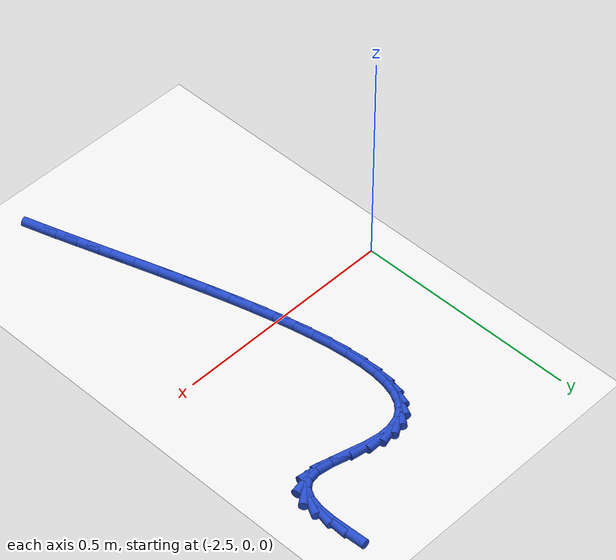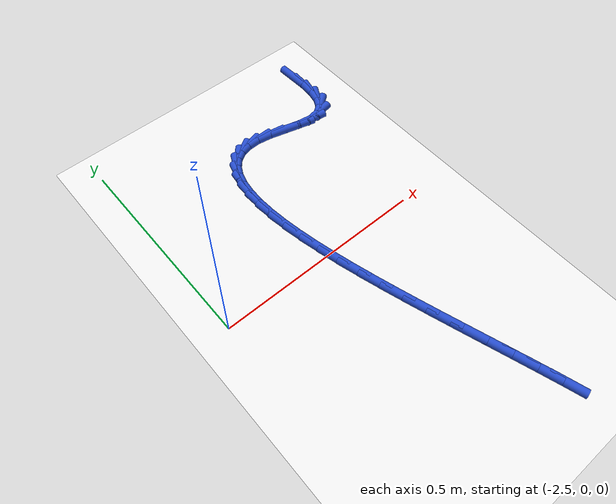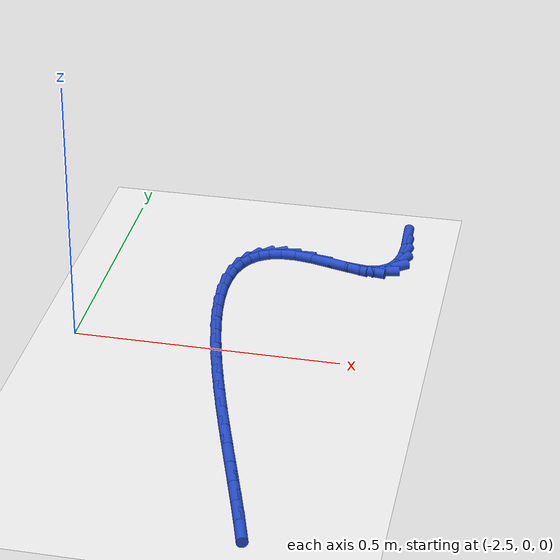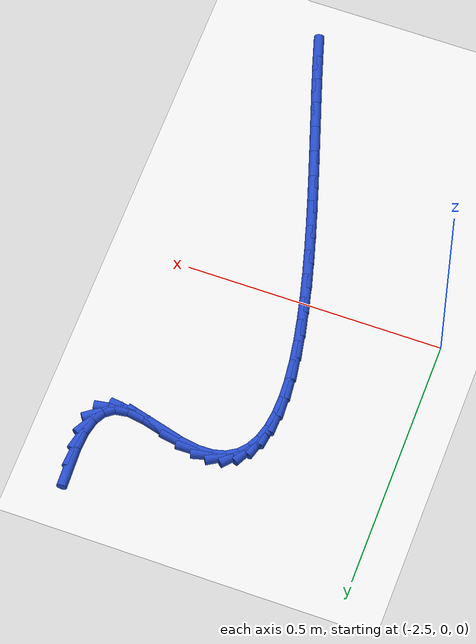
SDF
<sdf version="1.6">
 <world name="default">
  <model name="ground_plane">
   <static>1</static>
   <link name="link">
    <collision name="collision">
     <geometry><plane><normal>0 0 1</normal><size>100 100</size></plane></geometry>
     <surface><friction><ode><mu>100</mu><mu2>50</mu2></ode></friction></surface>
    </collision>
    <visual name="visual">
     <cast_shadows>0</cast_shadows>
     <geometry><plane><normal>0 0 1</normal><size>100 100</size></plane></geometry>
     <material>
      <script><uri>file://media/materials/scripts/gazebo.material</uri><name>Gazebo/WhiteGlow</name></script>
     </material>
    </visual>
   </link>
  </model>
  <model name="line">
   <link name="link_84">
    <pose>-1.9411811330460744 0.4690626129924157 0.01 0 1.57 -1.5256904111098226</pose>
    <collision name="collision">
     <geometry><cylinder><radius>0.01</radius><length>0.08</length></cylinder></geometry>
    </collision>
    <visual name="visual">
     <material>
      <script><name>Gazebo/Blue</name><uri>file://media/materials/scripts/gazebo.material</uri></script>
     </material>
     <geometry><cylinder><radius>0.01</radius><length>0.08</length></cylinder></geometry>
    </visual>
   </link>
   <link name="link_85">
    <pose>-1.939363995377513 0.42880392130696793 0.01 0 1.57 1.5215669505991989</pose>
    <collision name="collision">
     <geometry><cylinder><radius>0.01</radius><length>0.08</length></cylinder></geometry>
    </collision>
    <visual name="visual">
     <material>
      <script><name>Gazebo/Blue</name><uri>file://media/materials/scripts/gazebo.material</uri></script>
     </material>
     <geometry><cylinder><radius>0.01</radius><length>0.08</length></cylinder></geometry>
    </visual>
   </link>
   <link name="link_86">
    <pose>-1.9410996755676637 0.39357540656544066 0.01 0 1.57 1.3572206433870737</pose>
    <collision name="collision">
     <geometry><cylinder><radius>0.01</radius><length>0.08</length></cylinder></geometry>
    </collision>
    <visual name="visual">
     <material>
      <script><name>Gazebo/Blue</name><uri>file://media/materials/scripts/gazebo.material</uri></script>
     </material>
     <geometry><cylinder><radius>0.01</radius><length>0.08</length></cylinder></geometry>
    </visual>
   </link>
   <link name="link_87">
    <pose>-1.9474139277510742 0.36446183169670143 0.01 0 1.57 1.0726617431655097</pose>
    <collision name="collision">
     <geometry><cylinder><radius>0.01</radius><length>0.08</length></cylinder></geometry>
    </collision>
    <visual name="visual">
     <material>
      <script><name>Gazebo/Blue</name><uri>file://media/materials/scripts/gazebo.material</uri></script>
     </material>
     <geometry><cylinder><radius>0.01</radius><length>0.08</length></cylinder></geometry>
    </visual>
   </link>
   <link name="link_88">
    <pose>-1.9593325060622897 0.34254795962961737 0.01 0 1.57 0.6336967444818498</pose>
    <collision name="collision">
     <geometry><cylinder><radius>0.01</radius><length>0.08</length></cylinder></geometry>
    </collision>
    <visual name="visual">
     <material>
      <script><name>Gazebo/Blue</name><uri>file://media/materials/scripts/gazebo.material</uri></script>
     </material>
     <geometry><cylinder><radius>0.01</radius><length>0.08</length></cylinder></geometry>
    </visual>
   </link>
   <link name="link_89">
    <pose>-1.9778811646358583 0.32891855329305597 0.01 0 1.57 0.16119219974146323</pose>
    <collision name="collision">
     <geometry><cylinder><radius>0.01</radius><length>0.08</length></cylinder></geometry>
    </collision>
    <visual name="visual">
     <material>
      <script><name>Gazebo/Blue</name><uri>file://media/materials/scripts/gazebo.material</uri></script>
     </material>
     <geometry><cylinder><radius>0.01</radius><length>0.08</length></cylinder></geometry>
    </visual>
   </link>
   <link name="link_90">
    <pose>-2.004085099993887 0.32465771622533063 0.01 0 1.57 -0.14441951825249436</pose>
    <collision name="collision">
     <geometry><cylinder><radius>0.01</radius><length>0.08</length></cylinder></geometry>
    </collision>
    <visual name="visual">
     <material>
      <script><name>Gazebo/Blue</name><uri>file://media/materials/scripts/gazebo.material</uri></script>
     </material>
     <geometry><cylinder><radius>0.01</radius><length>0.08</length></cylinder></geometry>
    </visual>
   </link>
   <link name="link_91">
    <pose>-2.0378909882426184 0.3295741747965507 0.01 0 1.57 -0.2563564714336061</pose>
    <collision name="collision">
     <geometry><cylinder><radius>0.01</radius><length>0.08</length></cylinder></geometry>
    </collision>
    <visual name="visual">
     <material>
      <script><name>Gazebo/Blue</name><uri>file://media/materials/scripts/gazebo.material</uri></script>
     </material>
     <geometry><cylinder><radius>0.01</radius><length>0.08</length></cylinder></geometry>
    </visual>
   </link>
   <link name="link_92">
    <pose>-2.075918181503772 0.3395420121575911 0.01 0 1.57 -0.25920325822992685</pose>
    <collision name="collision">
     <geometry><cylinder><radius>0.01</radius><length>0.08</length></cylinder></geometry>
    </collision>
    <visual name="visual">
     <material>
      <script><name>Gazebo/Blue</name><uri>file://media/materials/scripts/gazebo.material</uri></script>
     </material>
     <geometry><cylinder><radius>0.01</radius><length>0.08</length></cylinder></geometry>
    </visual>
   </link>
   <link name="link_93">
    <pose>-2.1141464047635354 0.34967893649152515 0.01 0 1.57 -0.16135335954710123</pose>
    <collision name="collision">
     <geometry><cylinder><radius>0.01</radius><length>0.08</length></cylinder></geometry>
    </collision>
    <visual name="visual">
     <material>
      <script><name>Gazebo/Blue</name><uri>file://media/materials/scripts/gazebo.material</uri></script>
     </material>
     <geometry><cylinder><radius>0.01</radius><length>0.08</length></cylinder></geometry>
    </visual>
   </link>
   <link name="link_94">
    <pose>-2.1487223956959918 0.3553068141927821 0.01 0 1.57 0.02324669888049152</pose>
    <collision name="collision">
     <geometry><cylinder><radius>0.01</radius><length>0.08</length></cylinder></geometry>
    </collision>
    <visual name="visual">
     <material>
      <script><name>Gazebo/Blue</name><uri>file://media/materials/scripts/gazebo.material</uri></script>
     </material>
     <geometry><cylinder><radius>0.01</radius><length>0.08</length></cylinder></geometry>
    </visual>
   </link>
   <link name="link_95">
    <pose>-2.1781449656784413 0.3546227133322473 0.01 0 1.57 0.26589332979328667</pose>
    <collision name="collision">
     <geometry><cylinder><radius>0.01</radius><length>0.08</length></cylinder></geometry>
    </collision>
    <visual name="visual">
     <material>
      <script><name>Gazebo/Blue</name><uri>file://media/materials/scripts/gazebo.material</uri></script>
     </material>
     <geometry><cylinder><radius>0.01</radius><length>0.08</length></cylinder></geometry>
    </visual>
   </link>
   <link name="link_96">
    <pose>-2.2026512340393505 0.34794862941336613 0.01 0 1.57 0.5540584916845906</pose>
    <collision name="collision">
     <geometry><cylinder><radius>0.01</radius><length>0.08</length></cylinder></geometry>
    </collision>
    <visual name="visual">
     <material>
      <script><name>Gazebo/Blue</name><uri>file://media/materials/scripts/gazebo.material</uri></script>
     </material>
     <geometry><cylinder><radius>0.01</radius><length>0.08</length></cylinder></geometry>
    </visual>
   </link>
   <link name="link_97">
    <pose>-2.222519050326349 0.33565634702326347 0.01 0 1.57 0.8467954505629541</pose>
    <collision name="collision">
     <geometry><cylinder><radius>0.01</radius><length>0.08</length></cylinder></geometry>
    </collision>
    <visual name="visual">
     <material>
      <script><name>Gazebo/Blue</name><uri>file://media/materials/scripts/gazebo.material</uri></script>
     </material>
     <geometry><cylinder><radius>0.01</radius><length>0.08</length></cylinder></geometry>
    </visual>
   </link>
   <link name="link_98">
    <pose>-2.238026264087067 0.31811765074906445 0.01 0 1.57 1.0994050968879376</pose>
    <collision name="collision">
     <geometry><cylinder><radius>0.01</radius><length>0.08</length></cylinder></geometry>
    </collision>
    <visual name="visual">
     <material>
      <script><name>Gazebo/Blue</name><uri>file://media/materials/scripts/gazebo.material</uri></script>
     </material>
     <geometry><cylinder><radius>0.01</radius><length>0.08</length></cylinder></geometry>
    </visual>
   </link>
   <link name="link_99">
    <pose>-2.2494507248691376 0.2957043251778943 0.01 0 1.57 1.2949294324138876</pose>
    <collision name="collision">
     <geometry><cylinder><radius>0.01</radius><length>0.08</length></cylinder></geometry>
    </collision>
    <visual name="visual">
     <material>
      <script><name>Gazebo/Blue</name><uri>file://media/materials/scripts/gazebo.material</uri></script>
     </material>
     <geometry><cylinder><radius>0.01</radius><length>0.08</length></cylinder></geometry>
    </visual>
   </link>
   <link name="link_100">
    <pose>-2.2570702822201887 0.2687881548968778 0.01 0 1.57 1.4397364974301867</pose>
    <collision name="collision">
     <geometry><cylinder><radius>0.01</radius><length>0.08</length></cylinder></geometry>
    </collision>
    <visual name="visual">
     <material>
      <script><name>Gazebo/Blue</name><uri>file://media/materials/scripts/gazebo.material</uri></script>
     </material>
     <geometry><cylinder><radius>0.01</radius><length>0.08</length></cylinder></geometry>
    </visual>
   </link>
   <link name="link_101">
    <pose>-2.2611627856878527 0.23774092449314013 0.01 0 1.57 1.5465728616678007</pose>
    <collision name="collision">
     <geometry><cylinder><radius>0.01</radius><length>0.08</length></cylinder></geometry>
    </collision>
    <visual name="visual">
     <material>
      <script><name>Gazebo/Blue</name><uri>file://media/materials/scripts/gazebo.material</uri></script>
     </material>
     <geometry><cylinder><radius>0.01</radius><length>0.08</length></cylinder></geometry>
    </visual>
   </link>
   <link name="link_102">
    <pose>-2.2620060848197605 0.2029344185538063 0.01 0 1.57 -1.5151368562012628</pose>
    <collision name="collision">
     <geometry><cylinder><radius>0.01</radius><length>0.08</length></cylinder></geometry>
    </collision>
    <visual name="visual">
     <material>
      <script><name>Gazebo/Blue</name><uri>file://media/materials/scripts/gazebo.material</uri></script>
     </material>
     <geometry><cylinder><radius>0.01</radius><length>0.08</length></cylinder></geometry>
    </visual>
   </link>
   <link name="link_103">
    <pose>-2.259878029163542 0.16474042166600136 0.01 0 1.57 -1.4543252421018584</pose>
    <collision name="collision">
     <geometry><cylinder><radius>0.01</radius><length>0.08</length></cylinder></geometry>
    </collision>
    <visual name="visual">
     <material>
      <script><name>Gazebo/Blue</name><uri>file://media/materials/scripts/gazebo.material</uri></script>
     </material>
     <geometry><cylinder><radius>0.01</radius><length>0.08</length></cylinder></geometry>
    </visual>
   </link>
   <link name="link_104">
    <pose>-2.255056468266828 0.12353071841685026 0.01 0 1.57 -1.4072393299807355</pose>
    <collision name="collision">
     <geometry><cylinder><radius>0.01</radius><length>0.08</length></cylinder></geometry>
    </collision>
    <visual name="visual">
     <material>
      <script><name>Gazebo/Blue</name><uri>file://media/materials/scripts/gazebo.material</uri></script>
     </material>
     <geometry><cylinder><radius>0.01</radius><length>0.08</length></cylinder></geometry>
    </visual>
   </link>
   <link name="link_105">
    <pose>-2.247819251677251 0.07967709339347816 0.01 0 1.57 -1.3702785292008288</pose>
    <collision name="collision">
     <geometry><cylinder><radius>0.01</radius><length>0.08</length></cylinder></geometry>
    </collision>
    <visual name="visual">
     <material>
      <script><name>Gazebo/Blue</name><uri>file://media/materials/scripts/gazebo.material</uri></script>
     </material>
     <geometry><cylinder><radius>0.01</radius><length>0.08</length></cylinder></geometry>
    </visual>
   </link>
   <link name="link_106">
    <pose>-2.23844422894244 0.03355133118301013 0.01 0 1.57 -1.3409940630813981</pose>
    <collision name="collision">
     <geometry><cylinder><radius>0.01</radius><length>0.08</length></cylinder></geometry>
    </collision>
    <visual name="visual">
     <material>
      <script><name>Gazebo/Blue</name><uri>file://media/materials/scripts/gazebo.material</uri></script>
     </material>
     <geometry><cylinder><radius>0.01</radius><length>0.08</length></cylinder></geometry>
    </visual>
   </link>
   <link name="link_107">
    <pose>-2.2272092496100266 -0.014474783627428822 0.01 0 1.57 -1.3176975963674313</pose>
    <collision name="collision">
     <geometry><cylinder><radius>0.01</radius><length>0.08</length></cylinder></geometry>
    </collision>
    <visual name="visual">
     <material>
      <script><name>Gazebo/Blue</name><uri>file://media/materials/scripts/gazebo.material</uri></script>
     </material>
     <geometry><cylinder><radius>0.01</radius><length>0.08</length></cylinder></geometry>
    </visual>
   </link>
   <link name="link_108">
    <pose>-2.2143921632276404 -0.0640294664507137 0.01 0 1.57 -1.2992120448546616</pose>
    <collision name="collision">
     <geometry><cylinder><radius>0.01</radius><length>0.08</length></cylinder></geometry>
    </collision>
    <visual name="visual">
     <material>
      <script><name>Gazebo/Blue</name><uri>file://media/materials/scripts/gazebo.material</uri></script>
     </material>
     <geometry><cylinder><radius>0.01</radius><length>0.08</length></cylinder></geometry>
    </visual>
   </link>
   <link name="link_109">
    <pose>-2.200270819342913 -0.11474093269971938 0.01 0 1.57 -1.284713917359872</pose>
    <collision name="collision">
     <geometry><cylinder><radius>0.01</radius><length>0.08</length></cylinder></geometry>
    </collision>
    <visual name="visual">
     <material>
      <script><name>Gazebo/Blue</name><uri>file://media/materials/scripts/gazebo.material</uri></script>
     </material>
     <geometry><cylinder><radius>0.01</radius><length>0.08</length></cylinder></geometry>
    </visual>
   </link>
   <link name="link_110">
    <pose>-2.185123067503476 -0.16623739778732094 0.01 0 1.57 -1.2736336205190086</pose>
    <collision name="collision">
     <geometry><cylinder><radius>0.01</radius><length>0.08</length></cylinder></geometry>
    </collision>
    <visual name="visual">
     <material>
      <script><name>Gazebo/Blue</name><uri>file://media/materials/scripts/gazebo.material</uri></script>
     </material>
     <geometry><cylinder><radius>0.01</radius><length>0.08</length></cylinder></geometry>
    </visual>
   </link>
   <link name="link_111">
    <pose>-2.1692267572569595 -0.21814707712639322 0.01 0 1.57 -1.265593129409476</pose>
    <collision name="collision">
     <geometry><cylinder><radius>0.01</radius><length>0.08</length></cylinder></geometry>
    </collision>
    <visual name="visual">
     <material>
      <script><name>Gazebo/Blue</name><uri>file://media/materials/scripts/gazebo.material</uri></script>
     </material>
     <geometry><cylinder><radius>0.01</radius><length>0.08</length></cylinder></geometry>
    </visual>
   </link>
   <link name="link_112">
    <pose>-2.1528597381509935 -0.2700981861298112 0.01 0 1.57 -1.260368906387728</pose>
    <collision name="collision">
     <geometry><cylinder><radius>0.01</radius><length>0.08</length></cylinder></geometry>
    </collision>
    <visual name="visual">
     <material>
      <script><name>Gazebo/Blue</name><uri>file://media/materials/scripts/gazebo.material</uri></script>
     </material>
     <geometry><cylinder><radius>0.01</radius><length>0.08</length></cylinder></geometry>
    </visual>
   </link>
   <link name="link_113">
    <pose>-2.1362998597332092 -0.3217189402104498 0.01 0 1.57 -1.2578734315430702</pose>
    <collision name="collision">
     <geometry><cylinder><radius>0.01</radius><length>0.08</length></cylinder></geometry>
    </collision>
    <visual name="visual">
     <material>
      <script><name>Gazebo/Blue</name><uri>file://media/materials/scripts/gazebo.material</uri></script>
     </material>
     <geometry><cylinder><radius>0.01</radius><length>0.08</length></cylinder></geometry>
    </visual>
   </link>
   <link name="link_114">
    <pose>-2.119824971551238 -0.3726375547811841 0.01 0 1.57 -1.258152557251033</pose>
    <collision name="collision">
     <geometry><cylinder><radius>0.01</radius><length>0.08</length></cylinder></geometry>
    </collision>
    <visual name="visual">
     <material>
      <script><name>Gazebo/Blue</name><uri>file://media/materials/scripts/gazebo.material</uri></script>
     </material>
     <geometry><cylinder><radius>0.01</radius><length>0.08</length></cylinder></geometry>
    </visual>
   </link>
   <link name="link_115">
    <pose>-2.10371292315271 -0.42248224525488887 0.01 0 1.57 -1.261399195949781</pose>
    <collision name="collision">
     <geometry><cylinder><radius>0.01</radius><length>0.08</length></cylinder></geometry>
    </collision>
    <visual name="visual">
     <material>
      <script><name>Gazebo/Blue</name><uri>file://media/materials/scripts/gazebo.material</uri></script>
     </material>
     <geometry><cylinder><radius>0.01</radius><length>0.08</length></cylinder></geometry>
    </visual>
   </link>
   <link name="link_116">
    <pose>-2.0882415640852576 -0.4708812270444383 0.01 0 1.57 -1.2679876373898318</pose>
    <collision name="collision">
     <geometry><cylinder><radius>0.01</radius><length>0.08</length></cylinder></geometry>
    </collision>
    <visual name="visual">
     <material>
      <script><name>Gazebo/Blue</name><uri>file://media/materials/scripts/gazebo.material</uri></script>
     </material>
     <geometry><cylinder><radius>0.01</radius><length>0.08</length></cylinder></geometry>
    </visual>
   </link>
   <link name="link_117">
    <pose>-2.0736887438965086 -0.5174627155627091 0.01 0 1.57 -1.2785385148607329</pose>
    <collision name="collision">
     <geometry><cylinder><radius>0.01</radius><length>0.08</length></cylinder></geometry>
    </collision>
    <visual name="visual">
     <material>
      <script><name>Gazebo/Blue</name><uri>file://media/materials/scripts/gazebo.material</uri></script>
     </material>
     <geometry><cylinder><radius>0.01</radius><length>0.08</length></cylinder></geometry>
    </visual>
   </link>
  </model>
 </world>
</sdf>
